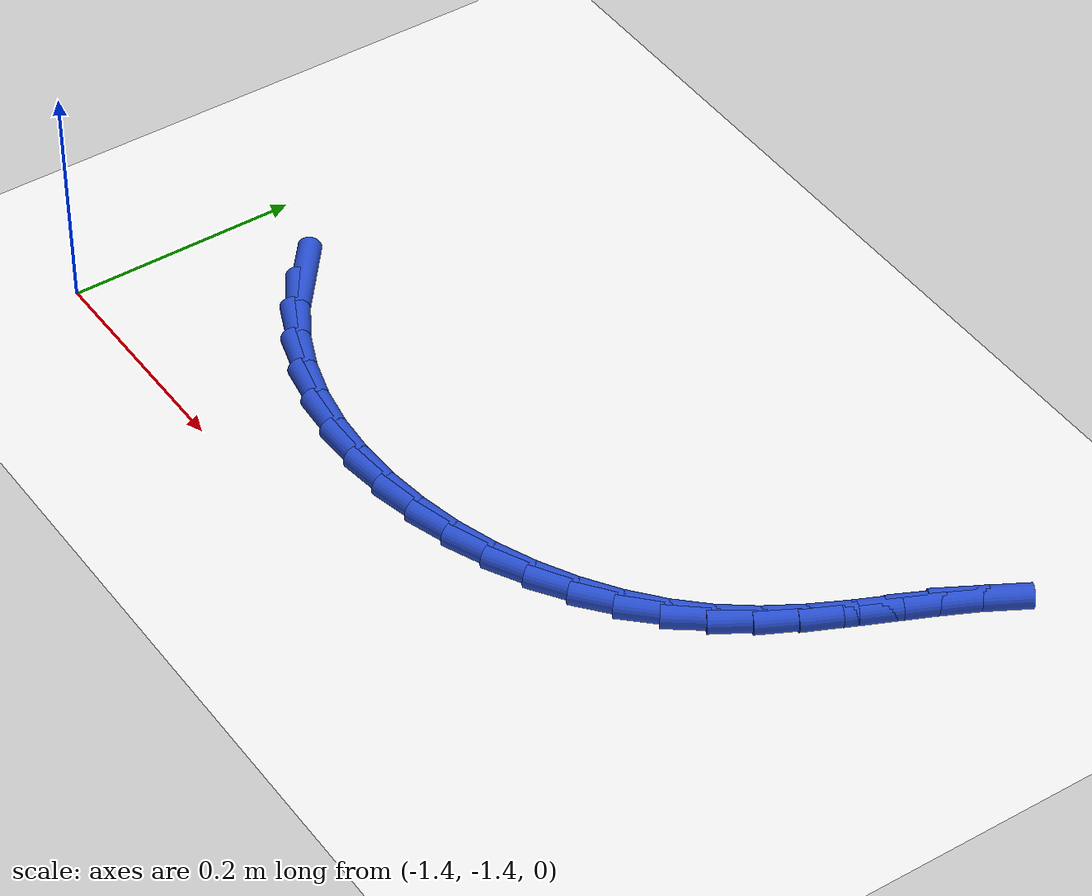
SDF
<sdf version="1.6">
 <world name="default">
  <model name="ground_plane">
   <static>1</static>
   <link name="link">
    <collision name="collision">
     <geometry><plane><normal>0 0 1</normal><size>100 100</size></plane></geometry>
     <surface><friction><ode><mu>100</mu><mu2>50</mu2></ode></friction></surface>
    </collision>
    <visual name="visual">
     <cast_shadows>0</cast_shadows>
     <geometry><plane><normal>0 0 1</normal><size>100 100</size></plane></geometry>
     <material>
      <script><uri>file://media/materials/scripts/gazebo.material</uri><name>Gazebo/WhiteGlow</name></script>
     </material>
    </visual>
   </link>
  </model>
  <model name="line">
   <link name="link_200">
    <pose>-1.302680441079032 -1.2419543277452305 0.01 0 1.57 -0.6755426966894242</pose>
    <collision name="collision">
     <geometry><cylinder><radius>0.01</radius><length>0.08</length></cylinder></geometry>
    </collision>
    <visual name="visual">
     <material>
      <script><name>Gazebo/Blue</name><uri>file://media/materials/scripts/gazebo.material</uri></script>
     </material>
     <geometry><cylinder><radius>0.01</radius><length>0.08</length></cylinder></geometry>
    </visual>
   </link>
   <link name="link_201">
    <pose>-1.2733654441366289 -1.2654448956713256 0.01 0 1.57 -0.5371176627972655</pose>
    <collision name="collision">
     <geometry><cylinder><radius>0.01</radius><length>0.08</length></cylinder></geometry>
    </collision>
    <visual name="visual">
     <material>
      <script><name>Gazebo/Blue</name><uri>file://media/materials/scripts/gazebo.material</uri></script>
     </material>
     <geometry><cylinder><radius>0.01</radius><length>0.08</length></cylinder></geometry>
    </visual>
   </link>
   <link name="link_202">
    <pose>-1.241529873727626 -1.284403562457015 0.01 0 1.57 -0.40624049835417414</pose>
    <collision name="collision">
     <geometry><cylinder><radius>0.01</radius><length>0.08</length></cylinder></geometry>
    </collision>
    <visual name="visual">
     <material>
      <script><name>Gazebo/Blue</name><uri>file://media/materials/scripts/gazebo.material</uri></script>
     </material>
     <geometry><cylinder><radius>0.01</radius><length>0.08</length></cylinder></geometry>
    </visual>
   </link>
   <link name="link_203">
    <pose>-1.2076174701150286 -1.2989916200015643 0.01 0 1.57 -0.2840871591748707</pose>
    <collision name="collision">
     <geometry><cylinder><radius>0.01</radius><length>0.08</length></cylinder></geometry>
    </collision>
    <visual name="visual">
     <material>
      <script><name>Gazebo/Blue</name><uri>file://media/materials/scripts/gazebo.material</uri></script>
     </material>
     <geometry><cylinder><radius>0.01</radius><length>0.08</length></cylinder></geometry>
    </visual>
   </link>
   <link name="link_204">
    <pose>-1.1720719735618406 -1.3093703602042386 0.01 0 1.57 -0.17065907579853226</pose>
    <collision name="collision">
     <geometry><cylinder><radius>0.01</radius><length>0.08</length></cylinder></geometry>
    </collision>
    <visual name="visual">
     <material>
      <script><name>Gazebo/Blue</name><uri>file://media/materials/scripts/gazebo.material</uri></script>
     </material>
     <geometry><cylinder><radius>0.01</radius><length>0.08</length></cylinder></geometry>
    </visual>
   </link>
   <link name="link_205">
    <pose>-1.1353371243310695 -1.315701074964302 0.01 0 1.57 -0.06511462353002971</pose>
    <collision name="collision">
     <geometry><cylinder><radius>0.01</radius><length>0.08</length></cylinder></geometry>
    </collision>
    <visual name="visual">
     <material>
      <script><name>Gazebo/Blue</name><uri>file://media/materials/scripts/gazebo.material</uri></script>
     </material>
     <geometry><cylinder><radius>0.01</radius><length>0.08</length></cylinder></geometry>
    </visual>
   </link>
   <link name="link_206">
    <pose>-1.0978566626857198 -1.3181450561810213 0.01 0 1.57 0.033903924355494476</pose>
    <collision name="collision">
     <geometry><cylinder><radius>0.01</radius><length>0.08</length></cylinder></geometry>
    </collision>
    <visual name="visual">
     <material>
      <script><name>Gazebo/Blue</name><uri>file://media/materials/scripts/gazebo.material</uri></script>
     </material>
     <geometry><cylinder><radius>0.01</radius><length>0.08</length></cylinder></geometry>
    </visual>
   </link>
   <link name="link_207">
    <pose>-1.0600743288887964 -1.31686359575366 0.01 0 1.57 0.12802990735382194</pose>
    <collision name="collision">
     <geometry><cylinder><radius>0.01</radius><length>0.08</length></cylinder></geometry>
    </collision>
    <visual name="visual">
     <material>
      <script><name>Gazebo/Blue</name><uri>file://media/materials/scripts/gazebo.material</uri></script>
     </material>
     <geometry><cylinder><radius>0.01</radius><length>0.08</length></cylinder></geometry>
    </visual>
   </link>
   <link name="link_208">
    <pose>-1.0224338632033048 -1.3120179855814844 0.01 0 1.57 0.21903037704715794</pose>
    <collision name="collision">
     <geometry><cylinder><radius>0.01</radius><length>0.08</length></cylinder></geometry>
    </collision>
    <visual name="visual">
     <material>
      <script><name>Gazebo/Blue</name><uri>file://media/materials/scripts/gazebo.material</uri></script>
     </material>
     <geometry><cylinder><radius>0.01</radius><length>0.08</length></cylinder></geometry>
    </visual>
   </link>
   <link name="link_209">
    <pose>-0.9853790058922508 -1.3037695175637596 0.01 0 1.57 0.30874257748421235</pose>
    <collision name="collision">
     <geometry><cylinder><radius>0.01</radius><length>0.08</length></cylinder></geometry>
    </collision>
    <visual name="visual">
     <material>
      <script><name>Gazebo/Blue</name><uri>file://media/materials/scripts/gazebo.material</uri></script>
     </material>
     <geometry><cylinder><radius>0.01</radius><length>0.08</length></cylinder></geometry>
    </visual>
   </link>
   <link name="link_210">
    <pose>-0.9493534972186388 -1.29227948359975 0.01 0 1.57 0.3990612069844602</pose>
    <collision name="collision">
     <geometry><cylinder><radius>0.01</radius><length>0.08</length></cylinder></geometry>
    </collision>
    <visual name="visual">
     <material>
      <script><name>Gazebo/Blue</name><uri>file://media/materials/scripts/gazebo.material</uri></script>
     </material>
     <geometry><cylinder><radius>0.01</radius><length>0.08</length></cylinder></geometry>
    </visual>
   </link>
   <link name="link_211">
    <pose>-0.9148010774454746 -1.277709175588721 0.01 0 1.57 0.49195054171066066</pose>
    <collision name="collision">
     <geometry><cylinder><radius>0.01</radius><length>0.08</length></cylinder></geometry>
    </collision>
    <visual name="visual">
     <material>
      <script><name>Gazebo/Blue</name><uri>file://media/materials/scripts/gazebo.material</uri></script>
     </material>
     <geometry><cylinder><radius>0.01</radius><length>0.08</length></cylinder></geometry>
    </visual>
   </link>
   <link name="link_212">
    <pose>-0.8821654868357633 -1.2602198854299385 0.01 0 1.57 0.5894563054903144</pose>
    <collision name="collision">
     <geometry><cylinder><radius>0.01</radius><length>0.08</length></cylinder></geometry>
    </collision>
    <visual name="visual">
     <material>
      <script><name>Gazebo/Blue</name><uri>file://media/materials/scripts/gazebo.material</uri></script>
     </material>
     <geometry><cylinder><radius>0.01</radius><length>0.08</length></cylinder></geometry>
    </visual>
   </link>
   <link name="link_213">
    <pose>-0.8518904656525098 -1.239972905022666 0.01 0 1.57 0.6936872311856802</pose>
    <collision name="collision">
     <geometry><cylinder><radius>0.01</radius><length>0.08</length></cylinder></geometry>
    </collision>
    <visual name="visual">
     <material>
      <script><name>Gazebo/Blue</name><uri>file://media/materials/scripts/gazebo.material</uri></script>
     </material>
     <geometry><cylinder><radius>0.01</radius><length>0.08</length></cylinder></geometry>
    </visual>
   </link>
   <link name="link_214">
    <pose>-0.8244197541587202 -1.2171295262661697 0.01 0 1.57 0.8067242066656813</pose>
    <collision name="collision">
     <geometry><cylinder><radius>0.01</radius><length>0.08</length></cylinder></geometry>
    </collision>
    <visual name="visual">
     <material>
      <script><name>Gazebo/Blue</name><uri>file://media/materials/scripts/gazebo.material</uri></script>
     </material>
     <geometry><cylinder><radius>0.01</radius><length>0.08</length></cylinder></geometry>
    </visual>
   </link>
   <link name="link_215">
    <pose>-0.8001970926173998 -1.1918510410597154 0.01 0 1.57 0.9268242182349706</pose>
    <collision name="collision">
     <geometry><cylinder><radius>0.01</radius><length>0.08</length></cylinder></geometry>
    </collision>
    <visual name="visual">
     <material>
      <script><name>Gazebo/Blue</name><uri>file://media/materials/scripts/gazebo.material</uri></script>
     </material>
     <geometry><cylinder><radius>0.01</radius><length>0.08</length></cylinder></geometry>
    </visual>
   </link>
   <link name="link_216">
    <pose>-0.7795452533144174 -1.1643422578431954 0.01 0 1.57 1.0284501167786075</pose>
    <collision name="collision">
     <geometry><cylinder><radius>0.01</radius><length>0.08</length></cylinder></geometry>
    </collision>
    <visual name="visual">
     <material>
      <script><name>Gazebo/Blue</name><uri>file://media/materials/scripts/gazebo.material</uri></script>
     </material>
     <geometry><cylinder><radius>0.01</radius><length>0.08</length></cylinder></geometry>
    </visual>
   </link>
   <link name="link_217">
    <pose>-0.7619324634288861 -1.135115395726152 0.01 0 1.57 1.098645471708775</pose>
    <collision name="collision">
     <geometry><cylinder><radius>0.01</radius><length>0.08</length></cylinder></geometry>
    </collision>
    <visual name="visual">
     <material>
      <script><name>Gazebo/Blue</name><uri>file://media/materials/scripts/gazebo.material</uri></script>
     </material>
     <geometry><cylinder><radius>0.01</radius><length>0.08</length></cylinder></geometry>
    </visual>
   </link>
   <link name="link_218">
    <pose>-0.7464588629106049 -1.104815088059056 0.01 0 1.57 1.1369601222764552</pose>
    <collision name="collision">
     <geometry><cylinder><radius>0.01</radius><length>0.08</length></cylinder></geometry>
    </collision>
    <visual name="visual">
     <material>
      <script><name>Gazebo/Blue</name><uri>file://media/materials/scripts/gazebo.material</uri></script>
     </material>
     <geometry><cylinder><radius>0.01</radius><length>0.08</length></cylinder></geometry>
    </visual>
   </link>
   <link name="link_219">
    <pose>-0.7322231522856986 -1.0740864860049453 0.01 0 1.57 1.1433503308369386</pose>
    <collision name="collision">
     <geometry><cylinder><radius>0.01</radius><length>0.08</length></cylinder></geometry>
    </collision>
    <visual name="visual">
     <material>
      <script><name>Gazebo/Blue</name><uri>file://media/materials/scripts/gazebo.material</uri></script>
     </material>
     <geometry><cylinder><radius>0.01</radius><length>0.08</length></cylinder></geometry>
    </visual>
   </link>
   <link name="link_220">
    <pose>-0.7183240320802915 -1.0435747407268585 0.01 0 1.57 1.1169375384857547</pose>
    <collision name="collision">
     <geometry><cylinder><radius>0.01</radius><length>0.08</length></cylinder></geometry>
    </collision>
    <visual name="visual">
     <material>
      <script><name>Gazebo/Blue</name><uri>file://media/materials/scripts/gazebo.material</uri></script>
     </material>
     <geometry><cylinder><radius>0.01</radius><length>0.08</length></cylinder></geometry>
    </visual>
   </link>
   <link name="link_221">
    <pose>-0.70386020282051 -1.0139250033878353 0.01 0 1.57 1.0557214504933863</pose>
    <collision name="collision">
     <geometry><cylinder><radius>0.01</radius><length>0.08</length></cylinder></geometry>
    </collision>
    <visual name="visual">
     <material>
      <script><name>Gazebo/Blue</name><uri>file://media/materials/scripts/gazebo.material</uri></script>
     </material>
     <geometry><cylinder><radius>0.01</radius><length>0.08</length></cylinder></geometry>
    </visual>
   </link>
  </model>
 </world>
</sdf>
